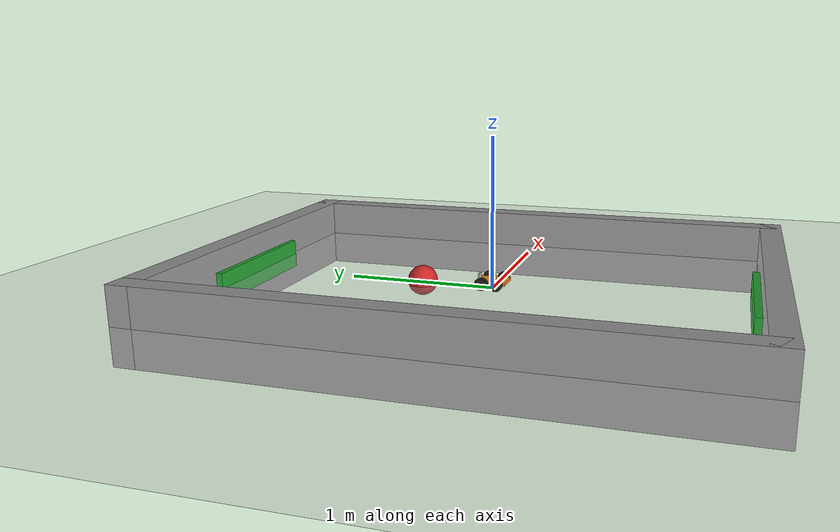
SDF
<sdf version="1.6">
 <world name="default">
  <light name="sun" type="directional">
   <pose>0 0 10 0 -0 0</pose>
   <diffuse>0.8 0.8 0.8 1</diffuse>
   <specular>0.2 0.2 0.2 1</specular>
   <attenuation>
    <range>1000</range>
    <constant>0.9</constant>
    <linear>0.01</linear>
    <quadratic>0.001</quadratic>
   </attenuation>
   <direction>-0.5 0.1 -0.9</direction>
  </light>
  <model name="ground_plane">
   <static>1</static>
   <link name="link">
    <collision name="collision">
     <geometry><plane><normal>0 0 1</normal><size>100 100</size></plane></geometry>
     <surface><friction><ode><mu>100</mu><mu2>50</mu2></ode></friction></surface>
    </collision>
    <visual name="visual">
     <cast_shadows>0</cast_shadows>
     <geometry><plane><normal>0 0 1</normal><size>100 100</size></plane></geometry>
     <material>
      <script><uri>file://media/materials/scripts/gazebo.material</uri><name>Gazebo/Grey</name></script>
     </material>
    </visual>
   </link>
  </model>
  <gravity>0 0 -9.8</gravity>
  <magnetic_field>6e-06 2.3e-05 -4.2e-05</magnetic_field>
  <atmosphere type="adiabatic"/>
  <physics name="default_physics" default="0" type="ode">
   <max_step_size>0.001</max_step_size>
   <real_time_factor>1</real_time_factor>
   <real_time_update_rate>1000</real_time_update_rate>
  </physics>
  <scene><ambient>0.4 0.4 0.4 1</ambient><background>0.7 0.7 0.7 1</background><shadows>1</shadows></scene>
  <spherical_coordinates>
   <surface_model>EARTH_WGS84</surface_model>
   <latitude_deg>0</latitude_deg>
   <longitude_deg>0</longitude_deg>
   <elevation>0</elevation>
   <heading_deg>0</heading_deg>
  </spherical_coordinates>
  <model name="arena_black">
   <link name="Wall_4">
    <pose>-1.3 0 0 0 0 -1.5708</pose>
    <inertial>
     <mass>1</mass>
     <inertia><ixx>1</ixx><ixy>0</ixy><ixz>0</ixz><iyy>1</iyy><iyz>0</iyz><izz>1</izz></inertia>
    </inertial>
    <visual name="Wall_4_Visual">
     <geometry><box><size>3.75 0.15 0.5</size></box></geometry>
     <material>
      <script><uri>file://media/materials/scripts/gazebo.material</uri><name>Gazebo/Grey</name></script>
      <ambient>0 0 0 1</ambient>
      <shader type="pixel"><normal_map>__default__</normal_map></shader>
      <diffuse>0.7 0.7 0.7 1</diffuse>
      <specular>0.01 0.01 0.01 1</specular>
      <emissive>0 0 0 1</emissive>
     </material>
     <meta><layer>0</layer></meta>
    </visual>
    <collision name="Wall_4_Collision">
     <geometry><box><size>3.75 0.15 0.5</size></box></geometry>
     <surface>
      <friction>
       <ode><mu>1</mu><mu2>1</mu2><fdir1>0 0 0</fdir1><slip1>0</slip1><slip2>0</slip2></ode>
       <torsional>
        <coefficient>1</coefficient>
        <patch_radius>0</patch_radius>
        <surface_radius>0</surface_radius>
        <use_patch_radius>1</use_patch_radius>
        <ode><slip>0</slip></ode>
       </torsional>
      </friction>
      <bounce><restitution_coefficient>0</restitution_coefficient><threshold>1e+06</threshold></bounce>
      <contact>
       <collide_without_contact>0</collide_without_contact>
       <collide_without_contact_bitmask>1</collide_without_contact_bitmask>
       <collide_bitmask>1</collide_bitmask>
       <ode>
        <soft_cfm>0</soft_cfm>
        <soft_erp>0.2</soft_erp>
        <kp>1e+13</kp>
        <kd>1</kd>
        <max_vel>0.01</max_vel>
        <min_depth>0</min_depth>
       </ode>
       <bullet>
        <split_impulse>1</split_impulse>
        <split_impulse_penetration_threshold>-0.01</split_impulse_penetration_threshold>
        <soft_cfm>0</soft_cfm>
        <soft_erp>0.2</soft_erp>
        <kp>1e+13</kp>
        <kd>1</kd>
       </bullet>
      </contact>
     </surface>
    </collision>
   </link>
   <link name="Wall_5">
    <pose>0 -1.8 0 0 -0 0</pose>
    <inertial>
     <mass>1</mass>
     <inertia><ixx>1</ixx><ixy>0</ixy><ixz>0</ixz><iyy>1</iyy><iyz>0</iyz><izz>1</izz></inertia>
    </inertial>
    <visual name="Wall_5_Visual">
     <geometry><box><size>2.75 0.15 0.5</size></box></geometry>
     <material>
      <script><uri>file://media/materials/scripts/gazebo.material</uri><name>Gazebo/Grey</name></script>
      <ambient>0 0 0 1</ambient>
      <shader type="pixel"><normal_map>__default__</normal_map></shader>
      <diffuse>0.7 0.7 0.7 1</diffuse>
      <specular>0.01 0.01 0.01 1</specular>
      <emissive>0 0 0 1</emissive>
     </material>
     <meta><layer>0</layer></meta>
    </visual>
    <collision name="Wall_5_Collision">
     <geometry><box><size>2.75 0.15 0.5</size></box></geometry>
     <surface>
      <friction>
       <ode><mu>1</mu><mu2>1</mu2><fdir1>0 0 0</fdir1><slip1>0</slip1><slip2>0</slip2></ode>
       <torsional>
        <coefficient>1</coefficient>
        <patch_radius>0</patch_radius>
        <surface_radius>0</surface_radius>
        <use_patch_radius>1</use_patch_radius>
        <ode><slip>0</slip></ode>
       </torsional>
      </friction>
      <bounce><restitution_coefficient>0</restitution_coefficient><threshold>1e+06</threshold></bounce>
      <contact>
       <collide_without_contact>0</collide_without_contact>
       <collide_without_contact_bitmask>1</collide_without_contact_bitmask>
       <collide_bitmask>1</collide_bitmask>
       <ode>
        <soft_cfm>0</soft_cfm>
        <soft_erp>0.2</soft_erp>
        <kp>1e+13</kp>
        <kd>1</kd>
        <max_vel>0.01</max_vel>
        <min_depth>0</min_depth>
       </ode>
       <bullet>
        <split_impulse>1</split_impulse>
        <split_impulse_penetration_threshold>-0.01</split_impulse_penetration_threshold>
        <soft_cfm>0</soft_cfm>
        <soft_erp>0.2</soft_erp>
        <kp>1e+13</kp>
        <kd>1</kd>
       </bullet>
      </contact>
     </surface>
    </collision>
   </link>
   <link name="Wall_6">
    <pose>1.3 0 0 0 -0 1.5708</pose>
    <inertial>
     <mass>1</mass>
     <inertia><ixx>1</ixx><ixy>0</ixy><ixz>0</ixz><iyy>1</iyy><iyz>0</iyz><izz>1</izz></inertia>
    </inertial>
    <visual name="Wall_6_Visual">
     <geometry><box><size>3.75 0.15 0.5</size></box></geometry>
     <material>
      <script><uri>file://media/materials/scripts/gazebo.material</uri><name>Gazebo/Grey</name></script>
      <ambient>0 0 0 1</ambient>
      <shader type="pixel"><normal_map>__default__</normal_map></shader>
      <diffuse>0.7 0.7 0.7 1</diffuse>
      <specular>0.01 0.01 0.01 1</specular>
      <emissive>0 0 0 1</emissive>
     </material>
     <meta><layer>0</layer></meta>
    </visual>
    <collision name="Wall_6_Collision">
     <geometry><box><size>3.75 0.15 0.5</size></box></geometry>
     <surface>
      <friction>
       <ode><mu>1</mu><mu2>1</mu2><fdir1>0 0 0</fdir1><slip1>0</slip1><slip2>0</slip2></ode>
       <torsional>
        <coefficient>1</coefficient>
        <patch_radius>0</patch_radius>
        <surface_radius>0</surface_radius>
        <use_patch_radius>1</use_patch_radius>
        <ode><slip>0</slip></ode>
       </torsional>
      </friction>
      <bounce><restitution_coefficient>0</restitution_coefficient><threshold>1e+06</threshold></bounce>
      <contact>
       <collide_without_contact>0</collide_without_contact>
       <collide_without_contact_bitmask>1</collide_without_contact_bitmask>
       <collide_bitmask>1</collide_bitmask>
       <ode>
        <soft_cfm>0</soft_cfm>
        <soft_erp>0.2</soft_erp>
        <kp>1e+13</kp>
        <kd>1</kd>
        <max_vel>0.01</max_vel>
        <min_depth>0</min_depth>
       </ode>
       <bullet>
        <split_impulse>1</split_impulse>
        <split_impulse_penetration_threshold>-0.01</split_impulse_penetration_threshold>
        <soft_cfm>0</soft_cfm>
        <soft_erp>0.2</soft_erp>
        <kp>1e+13</kp>
        <kd>1</kd>
       </bullet>
      </contact>
     </surface>
    </collision>
   </link>
   <link name="Wall_7">
    <pose>0 1.8 0 0 -0 3.14159</pose>
    <inertial>
     <mass>1</mass>
     <inertia><ixx>1</ixx><ixy>0</ixy><ixz>0</ixz><iyy>1</iyy><iyz>0</iyz><izz>1</izz></inertia>
    </inertial>
    <visual name="Wall_7_Visual">
     <geometry><box><size>2.75 0.15 0.5</size></box></geometry>
     <material>
      <script><uri>file://media/materials/scripts/gazebo.material</uri><name>Gazebo/Grey</name></script>
      <ambient>0 0 0 1</ambient>
      <shader type="pixel"><normal_map>__default__</normal_map></shader>
      <diffuse>0.7 0.7 0.7 1</diffuse>
      <specular>0.01 0.01 0.01 1</specular>
      <emissive>0 0 0 1</emissive>
     </material>
     <meta><layer>0</layer></meta>
    </visual>
    <collision name="Wall_7_Collision">
     <geometry><box><size>2.75 0.15 0.5</size></box></geometry>
     <surface>
      <friction>
       <ode><mu>1</mu><mu2>1</mu2><fdir1>0 0 0</fdir1><slip1>0</slip1><slip2>0</slip2></ode>
       <torsional>
        <coefficient>1</coefficient>
        <patch_radius>0</patch_radius>
        <surface_radius>0</surface_radius>
        <use_patch_radius>1</use_patch_radius>
        <ode><slip>0</slip></ode>
       </torsional>
      </friction>
      <bounce><restitution_coefficient>0</restitution_coefficient><threshold>1e+06</threshold></bounce>
      <contact>
       <collide_without_contact>0</collide_without_contact>
       <collide_without_contact_bitmask>1</collide_without_contact_bitmask>
       <collide_bitmask>1</collide_bitmask>
       <ode>
        <soft_cfm>0</soft_cfm>
        <soft_erp>0.2</soft_erp>
        <kp>1e+13</kp>
        <kd>1</kd>
        <max_vel>0.01</max_vel>
        <min_depth>0</min_depth>
       </ode>
       <bullet>
        <split_impulse>1</split_impulse>
        <split_impulse_penetration_threshold>-0.01</split_impulse_penetration_threshold>
        <soft_cfm>0</soft_cfm>
        <soft_erp>0.2</soft_erp>
        <kp>1e+13</kp>
        <kd>1</kd>
       </bullet>
      </contact>
     </surface>
    </collision>
   </link>
   <static>1</static>
   <pose>0.01305 0.030733 0 0 -0 0</pose>
  </model>
  <model name="net">
   <link name="Wall_13">
    <pose>-1.19776 -0.499998 0 0 0 -1.5708</pose>
    <inertial>
     <mass>1</mass>
     <inertia><ixx>1</ixx><ixy>0</ixy><ixz>0</ixz><iyy>1</iyy><iyz>0</iyz><izz>1</izz></inertia>
    </inertial>
    <visual name="Wall_13_Visual">
     <geometry><box><size>1 0.15 0.2</size></box></geometry>
     <material>
      <script><uri>file://media/materials/scripts/gazebo.material</uri><name>Gazebo/Green</name></script>
      <ambient>1 1 1 1</ambient>
      <shader type="pixel"><normal_map>__default__</normal_map></shader>
      <diffuse>0 1 0 1</diffuse>
      <specular>0 1 0 1</specular>
      <emissive>0 1 0 1</emissive>
     </material>
     <meta><layer>0</layer></meta>
    </visual>
    <collision name="Wall_13_Collision">
     <pose>0 0 1.25 0 -0 0</pose>
     <geometry><box><size>1 0.15 2.5</size></box></geometry>
     <surface>
      <friction>
       <ode><mu>1</mu><mu2>1</mu2><fdir1>0 0 0</fdir1><slip1>0</slip1><slip2>0</slip2></ode>
       <torsional>
        <coefficient>1</coefficient>
        <patch_radius>0</patch_radius>
        <surface_radius>0</surface_radius>
        <use_patch_radius>1</use_patch_radius>
        <ode><slip>0</slip></ode>
       </torsional>
      </friction>
      <bounce><restitution_coefficient>0</restitution_coefficient><threshold>1e+06</threshold></bounce>
      <contact>
       <collide_without_contact>0</collide_without_contact>
       <collide_without_contact_bitmask>1</collide_without_contact_bitmask>
       <collide_bitmask>1</collide_bitmask>
       <ode>
        <soft_cfm>0</soft_cfm>
        <soft_erp>0.2</soft_erp>
        <kp>1e+13</kp>
        <kd>1</kd>
        <max_vel>0.01</max_vel>
        <min_depth>0</min_depth>
       </ode>
       <bullet>
        <split_impulse>1</split_impulse>
        <split_impulse_penetration_threshold>-0.01</split_impulse_penetration_threshold>
        <soft_cfm>0</soft_cfm>
        <soft_erp>0.2</soft_erp>
        <kp>1e+13</kp>
        <kd>1</kd>
       </bullet>
      </contact>
     </surface>
    </collision>
   </link>
   <static>1</static>
   <pose>0.500116 0.597924 0 0 0 -1.56357</pose>
  </model>
  <model name="net_clone">
   <link name="Wall_13">
    <pose>-1.1825 -0.5 0 0 0 -1.5708</pose>
    <inertial>
     <mass>1</mass>
     <inertia><ixx>1</ixx><ixy>0</ixy><ixz>0</ixz><iyy>1</iyy><iyz>0</iyz><izz>1</izz></inertia>
    </inertial>
    <visual name="Wall_13_Visual">
     <geometry><box><size>1 0.15 0.2</size></box></geometry>
     <material>
      <script><uri>file://media/materials/scripts/gazebo.material</uri><name>Gazebo/Green</name></script>
      <ambient>1 1 1 1</ambient>
      <shader type="pixel"><normal_map>__default__</normal_map></shader>
      <diffuse>0 1 0 1</diffuse>
      <specular>0 1 0 1</specular>
      <emissive>0 1 0 1</emissive>
     </material>
     <meta><layer>0</layer></meta>
    </visual>
    <collision name="Wall_13_Collision">
     <pose>0 0 1.25 0 -0 0</pose>
     <geometry><box><size>1 0.15 2.5</size></box></geometry>
     <surface>
      <friction>
       <ode><mu>1</mu><mu2>1</mu2><fdir1>0 0 0</fdir1><slip1>0</slip1><slip2>0</slip2></ode>
       <torsional>
        <coefficient>1</coefficient>
        <patch_radius>0</patch_radius>
        <surface_radius>0</surface_radius>
        <use_patch_radius>1</use_patch_radius>
        <ode><slip>0</slip></ode>
       </torsional>
      </friction>
      <bounce><restitution_coefficient>0</restitution_coefficient><threshold>1e+06</threshold></bounce>
      <contact>
       <collide_without_contact>0</collide_without_contact>
       <collide_without_contact_bitmask>1</collide_without_contact_bitmask>
       <collide_bitmask>1</collide_bitmask>
       <ode>
        <soft_cfm>0</soft_cfm>
        <soft_erp>0.2</soft_erp>
        <kp>1e+13</kp>
        <kd>1</kd>
        <max_vel>0.01</max_vel>
        <min_depth>0</min_depth>
       </ode>
       <bullet>
        <split_impulse>1</split_impulse>
        <split_impulse_penetration_threshold>-0.01</split_impulse_penetration_threshold>
        <soft_cfm>0</soft_cfm>
        <soft_erp>0.2</soft_erp>
        <kp>1e+13</kp>
        <kd>1</kd>
       </bullet>
      </contact>
     </surface>
    </collision>
   </link>
   <static>1</static>
   <pose>-0.480622 -0.542456 0 0 -0 1.57364</pose>
  </model>
  <audio><device>default</device></audio>
  <model name="myrobot">
   <link name="base_link">
    <inertial>
     <pose>1e-06 0 1e-06 0 -0 0</pose>
     <mass>1.00001</mass>
     <inertia><ixx>1</ixx><ixy>0</ixy><ixz>-5.39995e-08</ixz><iyy>1</iyy><iyz>0</iyz><izz>1</izz></inertia>
    </inertial>
    <collision name="base_link_collision">
     <geometry><box><size>0.205 0.155 0.02</size></box></geometry>
    </collision>
    <collision name="base_link_fixed_joint_lump__camera_link_collision_1">
     <pose>0.09 0 0.06 0 -0 0</pose>
     <geometry><box><size>0.01 0.05 0.05</size></box></geometry>
    </collision>
    <visual name="base_link_visual">
     <pose>0 0 0.04 0 -0 0</pose>
     <geometry><box><size>0.205 0.155 0.02</size></box></geometry>
     <material>
      <script><name>Gazebo/Orange</name><uri>file://media/materials/scripts/gazebo.material</uri></script>
     </material>
    </visual>
    <visual name="base_link_fixed_joint_lump__camera_link_visual_1">
     <pose>0.09 0 0.06 0 -0 0</pose>
     <geometry><box><size>0.01 0.05 0.05</size></box></geometry>
     <material><script><uri>__default__</uri><name>__default__</name></script></material>
    </visual>
    <sensor name="camera1" type="camera">
     <update_rate>30</update_rate>
     <camera name="head">
      <horizontal_fov>1.08559</horizontal_fov>
      <image><width>640</width><height>480</height><format>R8G8B8</format></image>
      <clip><near>0.02</near><far>300</far></clip>
      <noise><type>gaussian</type><mean>0</mean><stddev>0.007</stddev></noise>
     </camera>
     <plugin name="camera_controller" filename="libgazebo_ros_camera.so">
      <alwaysOn>1</alwaysOn>
      <updateRate>0.0</updateRate>
      <cameraName>rrbot/camera1</cameraName>
      <imageTopicName>image_raw</imageTopicName>
      <cameraInfoTopicName>camera_info</cameraInfoTopicName>
      <frameName>camera_link</frameName>
      <hackBaseline>0.07</hackBaseline>
      <distortionK1>0.0</distortionK1>
      <distortionK2>0.0</distortionK2>
      <distortionK3>0.0</distortionK3>
      <distortionT1>0.0</distortionT1>
      <distortionT2>0.0</distortionT2>
      <robotNamespace>/</robotNamespace>
     </plugin>
     <pose>0.09 0 0.06 0 -0 0</pose>
    </sensor>
   </link>
   <link name="wheel_1">
    <pose>0.05 0.098 0.04 0 -0 0</pose>
    <inertial>
     <mass>0.01</mass>
     <inertia><ixx>1</ixx><ixy>0</ixy><ixz>0</ixz><iyy>1</iyy><iyz>0</iyz><izz>1</izz></inertia>
    </inertial>
    <collision name="wheel_1_collision">
     <geometry><cylinder><length>0.036</length><radius>0.04</radius></cylinder></geometry>
    </collision>
    <visual name="wheel_1_visual">
     <pose>0 0 0 3.14159 1.57079 -1.57089</pose>
     <geometry><cylinder><length>0.036</length><radius>0.04</radius></cylinder></geometry>
     <material>
      <script><name>Gazebo/Black</name><uri>file://media/materials/scripts/gazebo.material</uri></script>
     </material>
    </visual>
   </link>
   <joint name="base_to_wheel1" type="revolute">
    <child>wheel_1</child>
    <parent>base_link</parent>
    <axis>
     <xyz>1 0 0</xyz>
     <limit><lower>-1e+16</lower><upper>1e+16</upper></limit>
     <dynamics><spring_reference>0</spring_reference><spring_stiffness>0</spring_stiffness></dynamics>
     <use_parent_model_frame>1</use_parent_model_frame>
    </axis>
   </joint>
   <link name="wheel_2">
    <pose>-0.05 0.098 0.04 0 -0 0</pose>
    <inertial>
     <mass>0.01</mass>
     <inertia><ixx>1</ixx><ixy>0</ixy><ixz>0</ixz><iyy>1</iyy><iyz>0</iyz><izz>1</izz></inertia>
    </inertial>
    <collision name="wheel_2_collision">
     <geometry><cylinder><length>0.036</length><radius>0.04</radius></cylinder></geometry>
    </collision>
    <visual name="wheel_2_visual">
     <pose>-0 0 0 3.14159 1.57079 -1.57089</pose>
     <geometry><cylinder><length>0.036</length><radius>0.04</radius></cylinder></geometry>
     <material>
      <script><name>Gazebo/Black</name><uri>file://media/materials/scripts/gazebo.material</uri></script>
     </material>
    </visual>
   </link>
   <joint name="base_to_wheel2" type="revolute">
    <child>wheel_2</child>
    <parent>base_link</parent>
    <axis>
     <xyz>1 0 0</xyz>
     <limit><lower>-1e+16</lower><upper>1e+16</upper></limit>
     <dynamics><spring_reference>0</spring_reference><spring_stiffness>0</spring_stiffness></dynamics>
     <use_parent_model_frame>1</use_parent_model_frame>
    </axis>
   </joint>
   <link name="wheel_3">
    <pose>0.05 -0.098 0.04 0 -0 0</pose>
    <inertial>
     <mass>0.01</mass>
     <inertia><ixx>1</ixx><ixy>0</ixy><ixz>0</ixz><iyy>1</iyy><iyz>0</iyz><izz>1</izz></inertia>
    </inertial>
    <collision name="wheel_3_collision">
     <geometry><cylinder><length>0.036</length><radius>0.04</radius></cylinder></geometry>
    </collision>
    <visual name="wheel_3_visual">
     <pose>0 -0 0 3.14159 1.57079 -1.57089</pose>
     <geometry><cylinder><length>0.036</length><radius>0.04</radius></cylinder></geometry>
     <material>
      <script><name>Gazebo/Black</name><uri>file://media/materials/scripts/gazebo.material</uri></script>
     </material>
    </visual>
   </link>
   <joint name="base_to_wheel3" type="revolute">
    <child>wheel_3</child>
    <parent>base_link</parent>
    <axis>
     <xyz>1 0 0</xyz>
     <limit><lower>-1e+16</lower><upper>1e+16</upper></limit>
     <dynamics><spring_reference>0</spring_reference><spring_stiffness>0</spring_stiffness></dynamics>
     <use_parent_model_frame>1</use_parent_model_frame>
    </axis>
   </joint>
   <link name="wheel_4">
    <pose>-0.05 -0.098 0.04 0 -0 0</pose>
    <inertial>
     <mass>0.01</mass>
     <inertia><ixx>1</ixx><ixy>0</ixy><ixz>0</ixz><iyy>1</iyy><iyz>0</iyz><izz>1</izz></inertia>
    </inertial>
    <collision name="wheel_4_collision">
     <geometry><cylinder><length>0.036</length><radius>0.04</radius></cylinder></geometry>
    </collision>
    <visual name="wheel_4_visual">
     <pose>-0 -0 0 3.14159 1.57079 -1.57089</pose>
     <geometry><cylinder><length>0.036</length><radius>0.04</radius></cylinder></geometry>
     <material>
      <script><name>Gazebo/Black</name><uri>file://media/materials/scripts/gazebo.material</uri></script>
     </material>
    </visual>
   </link>
   <joint name="base_to_wheel4" type="revolute">
    <child>wheel_4</child>
    <parent>base_link</parent>
    <axis>
     <xyz>1 0 0</xyz>
     <limit><lower>-1e+16</lower><upper>1e+16</upper></limit>
     <dynamics><spring_reference>0</spring_reference><spring_stiffness>0</spring_stiffness></dynamics>
     <use_parent_model_frame>1</use_parent_model_frame>
    </axis>
   </joint>
   <plugin name="gazebo_ros_control" filename="libgazebo_ros_control.so">
    <legacyModeNS>1</legacyModeNS>
    <robotNamespace>/</robotNamespace>
   </plugin>
   <static>0</static>
   <plugin name="object_controller" filename="libgazebo_ros_planar_move.so">
    <commandTopic>cmd_vel</commandTopic>
    <odometryTopic>odom</odometryTopic>
    <odometryFrame>odom</odometryFrame>
    <odometryRate>20.0</odometryRate>
    <robotBaseFrame>base_link</robotBaseFrame>
    <robotNamespace>/</robotNamespace>
   </plugin>
   <pose>-0 0 0.01 0 -0 1.57</pose>
  </model>
  <model name="ball_red">
   <link name="link">
    <pose>0 1.5 0.284585 0 -0 0</pose>
    <inertial>
     <mass>0.05</mass>
     <inertia><ixx>0.1</ixx><ixy>0</ixy><ixz>0</ixz><iyy>0.1</iyy><iyz>0</iyz><izz>0.1</izz></inertia>
    </inertial>
    <visual name="visual">
     <geometry><sphere><radius>0.1</radius></sphere></geometry>
     <material>
      <script><name>Gazebo/RedBright</name><uri>file://media/materials/scripts/gazebo.material</uri></script>
      <ambient>1 0 0 1</ambient>
      <diffuse>1 0 0 1</diffuse>
      <specular>1 0 0 1</specular>
      <emissive>0 0 0 1</emissive>
      <shader type="vertex"><normal_map>__default__</normal_map></shader>
     </material>
    </visual>
    <collision name="collision">
     <geometry><sphere><radius>0.1</radius></sphere></geometry>
     <surface>
      <friction>
       <ode><mu>1</mu><mu2>1</mu2><fdir1>0 0 0</fdir1><slip1>0</slip1><slip2>0</slip2></ode>
       <torsional>
        <coefficient>1</coefficient>
        <patch_radius>0</patch_radius>
        <surface_radius>0</surface_radius>
        <use_patch_radius>1</use_patch_radius>
        <ode><slip>0</slip></ode>
       </torsional>
      </friction>
      <bounce><restitution_coefficient>0.5</restitution_coefficient><threshold>0.001</threshold></bounce>
      <contact>
       <collide_without_contact>0</collide_without_contact>
       <collide_without_contact_bitmask>1</collide_without_contact_bitmask>
       <collide_bitmask>1</collide_bitmask>
       <ode>
        <soft_cfm>0</soft_cfm>
        <soft_erp>0.2</soft_erp>
        <kp>1e+13</kp>
        <kd>1</kd>
        <max_vel>10</max_vel>
        <min_depth>0</min_depth>
       </ode>
       <bullet>
        <split_impulse>1</split_impulse>
        <split_impulse_penetration_threshold>-0.01</split_impulse_penetration_threshold>
        <soft_cfm>0</soft_cfm>
        <soft_erp>0.2</soft_erp>
        <kp>1e+13</kp>
        <kd>1</kd>
       </bullet>
      </contact>
     </surface>
    </collision>
   </link>
   <static>0</static>
   <pose>-0.009768 -1.01212 -0.264585 0 -0 0</pose>
  </model>
 </world>
</sdf>
